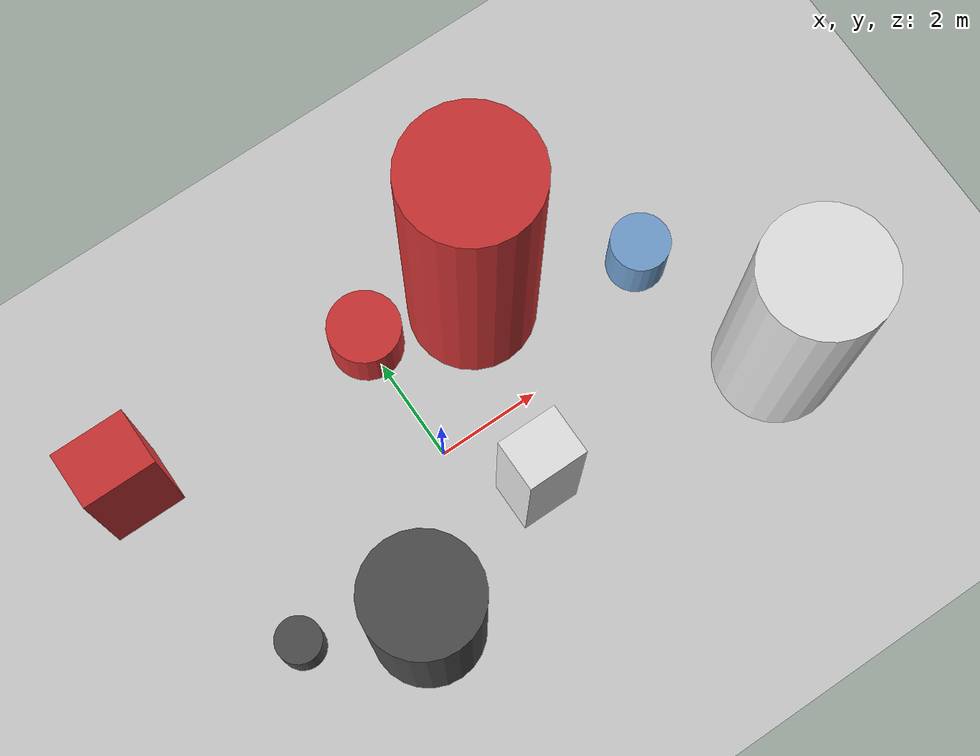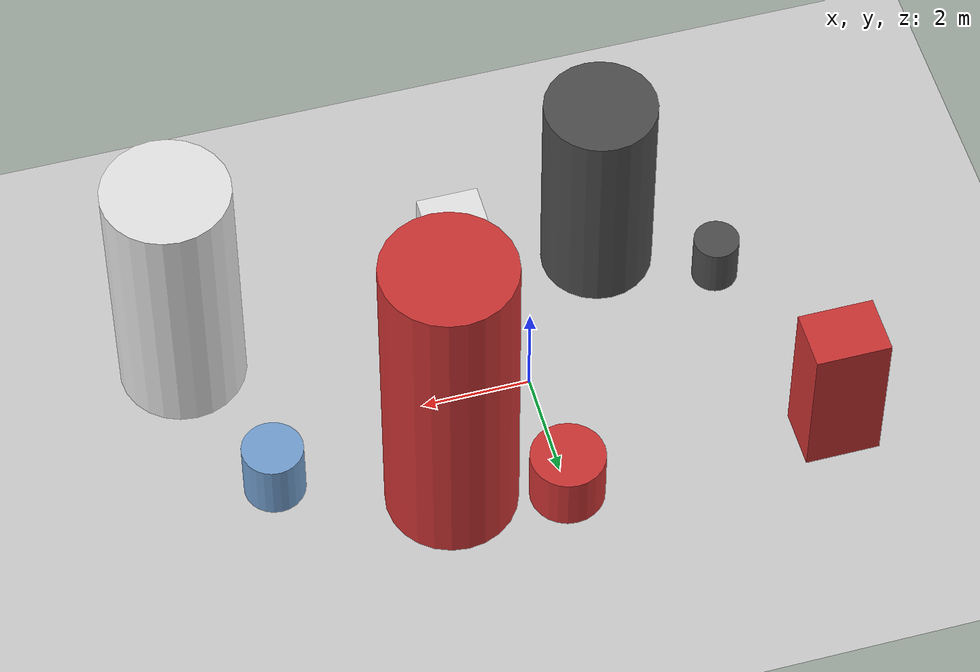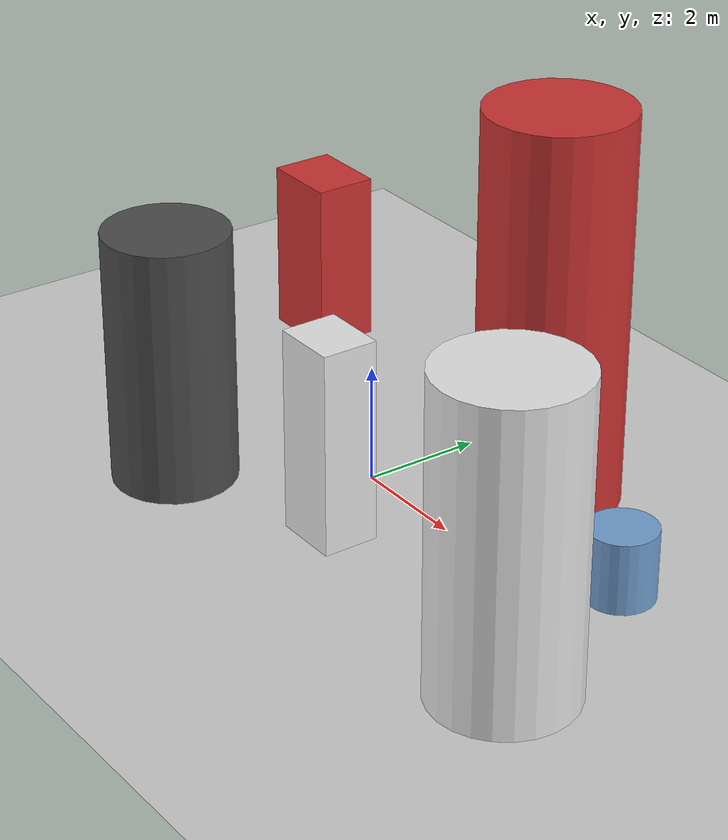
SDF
<?xml version='1.0'?>
<sdf version='1.6'>
  <world name='routeA_rl_v1__support_expansion__rl_train__mixed_3d_low_density_route__000134'>
    <!-- Sun light -->
    <light name='sun' type='directional'>
      <cast_shadows>1</cast_shadows>
      <pose>0 0 10 0 0 0</pose>
      <diffuse>0.8 0.8 0.8 1</diffuse>
      <specular>0.2 0.2 0.2 1</specular>
      <attenuation>
        <range>1000</range>
        <constant>0.9</constant>
        <linear>0.01</linear>
        <quadratic>0.001</quadratic>
      </attenuation>
      <direction>-0.5 0.1 -0.9</direction>
    </light>

    <!-- Ground plane -->
    <model name='ground_plane'>
      <static>1</static>
      <link name='link'>
        <collision name='collision'>
          <geometry>
            <plane>
              <normal>0 0 1</normal>
              <size>100 100</size>
            </plane>
          </geometry>
          <surface>
            <contact>
              <collide_bitmask>65535</collide_bitmask>
              <ode/>
            </contact>
            <friction>
              <ode>
                <mu>100</mu>
                <mu2>50</mu2>
              </ode>
              <torsional><ode/></torsional>
            </friction>
            <bounce/>
          </surface>
          <max_contacts>10</max_contacts>
        </collision>
        <visual name='visual'>
          <cast_shadows>0</cast_shadows>
          <geometry>
            <plane>
              <normal>0 0 1</normal>
              <size>100 100</size>
            </plane>
          </geometry>
          <material>
            <script>
              <uri>file://media/materials/scripts/gazebo.material</uri>
              <n>Gazebo/Grey</n>
            </script>
          </material>
        </visual>
      </link>
    </model>

    <!-- Environment -->
    <magnetic_field>6e-06 2.3e-05 -4.2e-05</magnetic_field>
    <atmosphere type='adiabatic'/>
    <physics name='default_physics' default='0' type='ode'>
      <gravity>0 0 -9.8</gravity>
      <max_step_size>0.004</max_step_size>
      <real_time_factor>1</real_time_factor>
      <real_time_update_rate>250</real_time_update_rate>
    </physics>
    <scene>
      <ambient>0.4 0.4 0.4 1</ambient>
      <background>0.7 0.7 0.7 1</background>
      <shadows>1</shadows>
    </scene>
    <wind/>
    <spherical_coordinates>
      <surface_model>EARTH_WGS84</surface_model>
      <latitude_deg>0</latitude_deg>
      <longitude_deg>0</longitude_deg>
      <elevation>0</elevation>
      <heading_deg>0</heading_deg>
    </spherical_coordinates>

    <!-- ============ OBSTACLES (8) ============ -->
    <model name='low_obs_0'>
      <static>1</static>
      <link name='link'>
        <visual name='visual'>
          <geometry>
            <cylinder>
              <radius>0.4254</radius>
              <length>1.0158</length>
            </cylinder>
          </geometry>
          <material>
            <script>
              <n>Gazebo/DarkGrey</n>
              <uri>file://media/materials/scripts/gazebo.material</uri>
            </script>
            <ambient>0.3 0.3 0.3 1</ambient>
          </material>
        </visual>
        <collision name='collision'>
          <geometry>
            <cylinder>
              <radius>0.4254</radius>
              <length>1.0158</length>
            </cylinder>
          </geometry>
          <max_contacts>10</max_contacts>
          <surface>
            <contact><ode/></contact>
            <bounce/>
            <friction>
              <ode><mu>1</mu><mu2>1</mu2></ode>
              <torsional><ode/></torsional>
            </friction>
          </surface>
        </collision>
      </link>
      <pose>-4.0000 -1.5000 0.5079 0 0 0.0000</pose>
    </model>

    <model name='low_obs_1'>
      <static>1</static>
      <link name='link'>
        <visual name='visual'>
          <geometry>
            <cylinder>
              <radius>0.6841</radius>
              <length>1.1568</length>
            </cylinder>
          </geometry>
          <material>
            <script>
              <n>Gazebo/Red</n>
              <uri>file://media/materials/scripts/gazebo.material</uri>
            </script>
            <ambient>0.8 0.2 0.2 1</ambient>
          </material>
        </visual>
        <collision name='collision'>
          <geometry>
            <cylinder>
              <radius>0.6841</radius>
              <length>1.1568</length>
            </cylinder>
          </geometry>
          <max_contacts>10</max_contacts>
          <surface>
            <contact><ode/></contact>
            <bounce/>
            <friction>
              <ode><mu>1</mu><mu2>1</mu2></ode>
              <torsional><ode/></torsional>
            </friction>
          </surface>
        </collision>
      </link>
      <pose>0.0000 2.5000 0.5784 0 0 0.0000</pose>
    </model>

    <model name='low_obs_2'>
      <static>1</static>
      <link name='link'>
        <visual name='visual'>
          <geometry>
            <cylinder>
              <radius>0.5592</radius>
              <length>1.1968</length>
            </cylinder>
          </geometry>
          <material>
            <script>
              <n>Gazebo/Blue</n>
              <uri>file://media/materials/scripts/gazebo.material</uri>
            </script>
            <ambient>0.447 0.624 0.812 1</ambient>
          </material>
        </visual>
        <collision name='collision'>
          <geometry>
            <cylinder>
              <radius>0.5592</radius>
              <length>1.1968</length>
            </cylinder>
          </geometry>
          <max_contacts>10</max_contacts>
          <surface>
            <contact><ode/></contact>
            <bounce/>
            <friction>
              <ode><mu>1</mu><mu2>1</mu2></ode>
              <torsional><ode/></torsional>
            </friction>
          </surface>
        </collision>
      </link>
      <pose>5.0000 1.0000 0.5984 0 0 0.0000</pose>
    </model>

    <model name='tall_obs_0'>
      <static>1</static>
      <link name='link'>
        <visual name='visual'>
          <geometry>
            <cylinder>
              <radius>1.0382</radius>
              <length>4.3178</length>
            </cylinder>
          </geometry>
          <material>
            <script>
              <n>Gazebo/DarkGrey</n>
              <uri>file://media/materials/scripts/gazebo.material</uri>
            </script>
            <ambient>0.3 0.3 0.3 1</ambient>
          </material>
        </visual>
        <collision name='collision'>
          <geometry>
            <cylinder>
              <radius>1.0382</radius>
              <length>4.3178</length>
            </cylinder>
          </geometry>
          <max_contacts>10</max_contacts>
          <surface>
            <contact><ode/></contact>
            <bounce/>
            <friction>
              <ode><mu>1</mu><mu2>1</mu2></ode>
              <torsional><ode/></torsional>
            </friction>
          </surface>
        </collision>
      </link>
      <pose>-2.0000 -2.5000 2.1589 0 0 0.0000</pose>
    </model>

    <model name='tall_obs_1'>
      <static>1</static>
      <link name='link'>
        <visual name='visual'>
          <geometry>
            <cylinder>
              <radius>1.2012</radius>
              <length>6.6119</length>
            </cylinder>
          </geometry>
          <material>
            <script>
              <n>Gazebo/Red</n>
              <uri>file://media/materials/scripts/gazebo.material</uri>
            </script>
            <ambient>0.8 0.2 0.2 1</ambient>
          </material>
        </visual>
        <collision name='collision'>
          <geometry>
            <cylinder>
              <radius>1.2012</radius>
              <length>6.6119</length>
            </cylinder>
          </geometry>
          <max_contacts>10</max_contacts>
          <surface>
            <contact><ode/></contact>
            <bounce/>
            <friction>
              <ode><mu>1</mu><mu2>1</mu2></ode>
              <torsional><ode/></torsional>
            </friction>
          </surface>
        </collision>
      </link>
      <pose>2.0000 2.0000 3.3060 0 0 0.0000</pose>
    </model>

    <model name='tall_obs_2'>
      <static>1</static>
      <link name='link'>
        <visual name='visual'>
          <geometry>
            <cylinder>
              <radius>1.1612</radius>
              <length>5.1597</length>
            </cylinder>
          </geometry>
          <material>
            <script>
              <n>Gazebo/White</n>
              <uri>file://media/materials/scripts/gazebo.material</uri>
            </script>
            <ambient>0.9 0.9 0.9 1</ambient>
          </material>
        </visual>
        <collision name='collision'>
          <geometry>
            <cylinder>
              <radius>1.1612</radius>
              <length>5.1597</length>
            </cylinder>
          </geometry>
          <max_contacts>10</max_contacts>
          <surface>
            <contact><ode/></contact>
            <bounce/>
            <friction>
              <ode><mu>1</mu><mu2>1</mu2></ode>
              <torsional><ode/></torsional>
            </friction>
          </surface>
        </collision>
      </link>
      <pose>6.0000 -2.0000 2.5799 0 0 0.0000</pose>
    </model>

    <model name='med_obs_0'>
      <static>1</static>
      <link name='link'>
        <visual name='visual'>
          <geometry>
            <box>
              <size>1.3781 1.0759 2.9898</size>
            </box>
          </geometry>
          <material>
            <script>
              <n>Gazebo/Red</n>
              <uri>file://media/materials/scripts/gazebo.material</uri>
            </script>
            <ambient>0.8 0.2 0.2 1</ambient>
          </material>
        </visual>
        <collision name='collision'>
          <geometry>
            <box>
              <size>1.3781 1.0759 2.9898</size>
            </box>
          </geometry>
          <max_contacts>10</max_contacts>
          <surface>
            <contact><ode/></contact>
            <bounce/>
            <friction>
              <ode><mu>1</mu><mu2>1</mu2></ode>
              <torsional><ode/></torsional>
            </friction>
          </surface>
        </collision>
      </link>
      <pose>-5.0000 2.5000 1.4949 0 0 0.0000</pose>
    </model>

    <model name='med_obs_1'>
      <static>1</static>
      <link name='link'>
        <visual name='visual'>
          <geometry>
            <box>
              <size>1.1183 0.9414 3.4334</size>
            </box>
          </geometry>
          <material>
            <script>
              <n>Gazebo/White</n>
              <uri>file://media/materials/scripts/gazebo.material</uri>
            </script>
            <ambient>0.9 0.9 0.9 1</ambient>
          </material>
        </visual>
        <collision name='collision'>
          <geometry>
            <box>
              <size>1.1183 0.9414 3.4334</size>
            </box>
          </geometry>
          <max_contacts>10</max_contacts>
          <surface>
            <contact><ode/></contact>
            <bounce/>
            <friction>
              <ode><mu>1</mu><mu2>1</mu2></ode>
              <torsional><ode/></torsional>
            </friction>
          </surface>
        </collision>
      </link>
      <pose>1.0000 -1.5000 1.7167 0 0 0.0000</pose>
    </model>

    <!-- GUI camera -->
    <gui fullscreen='0'>
      <camera name='user_camera'>
        <pose>-15 0 18 0 0.85 0.15</pose>
        <view_controller>orbit</view_controller>
        <projection_type>perspective</projection_type>
      </camera>
    </gui>
  </world>
</sdf>
